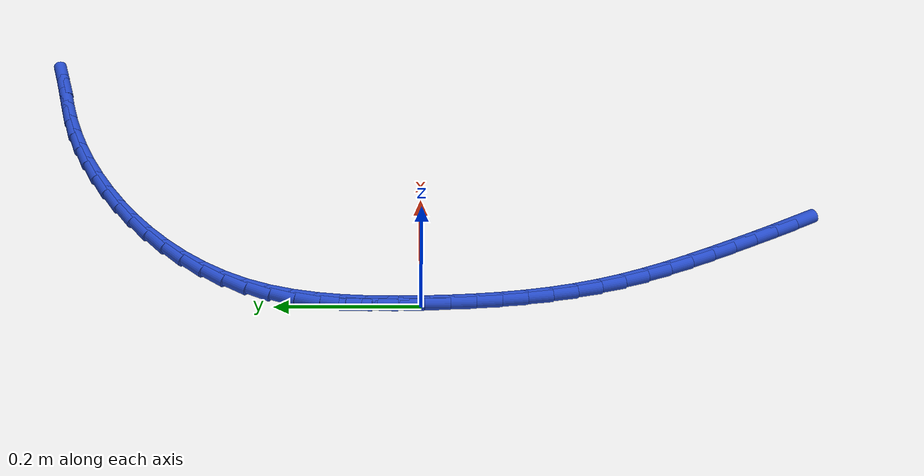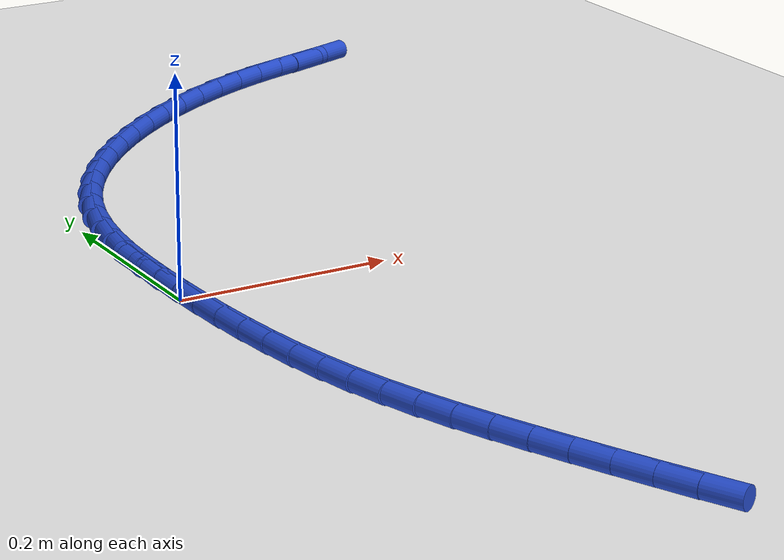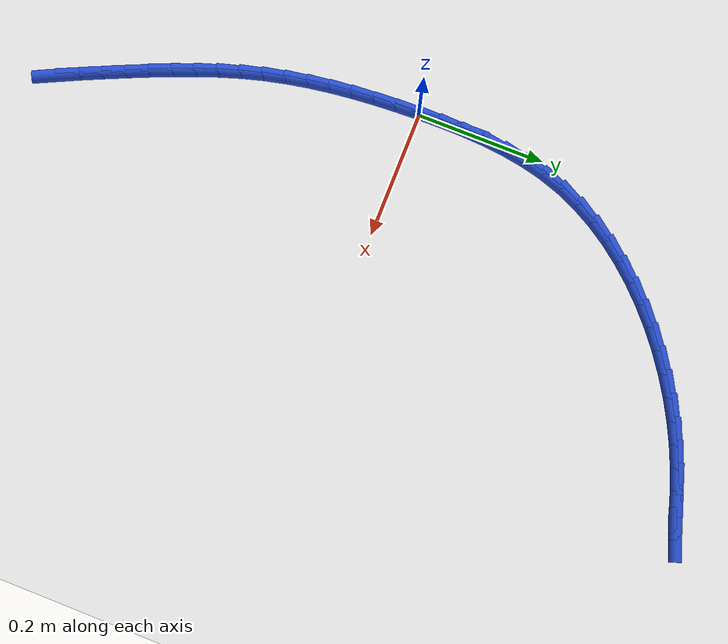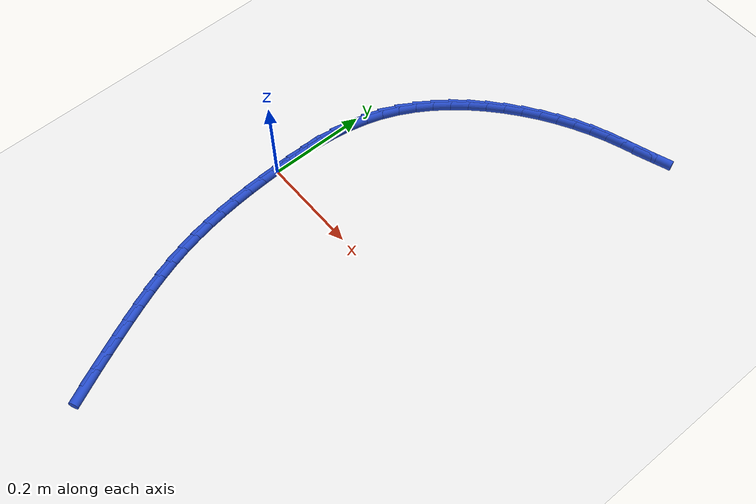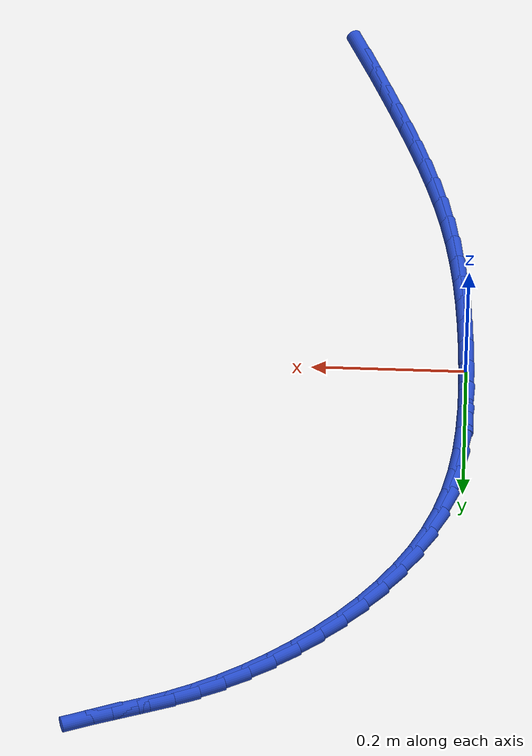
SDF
<sdf version="1.6">
 <world name="default">
  <model name="ground_plane">
   <static>1</static>
   <link name="link">
    <collision name="collision">
     <geometry><plane><normal>0 0 1</normal><size>100 100</size></plane></geometry>
     <surface><friction><ode><mu>100</mu><mu2>50</mu2></ode></friction></surface>
    </collision>
    <visual name="visual">
     <cast_shadows>0</cast_shadows>
     <geometry><plane><normal>0 0 1</normal><size>100 100</size></plane></geometry>
     <material>
      <script><uri>file://media/materials/scripts/gazebo.material</uri><name>Gazebo/WhiteGlow</name></script>
     </material>
    </visual>
   </link>
  </model>
  <model name="line">
   <link name="link_0">
    <pose>-1.4203048459560108e-17 4.85722573273506e-17 0.01 0 1.57 -1.554861941099303</pose>
    <collision name="collision">
     <geometry><cylinder><radius>0.01</radius><length>0.08</length></cylinder></geometry>
    </collision>
    <visual name="visual">
     <material>
      <script><name>Gazebo/Blue</name><uri>file://media/materials/scripts/gazebo.material</uri></script>
     </material>
     <geometry><cylinder><radius>0.01</radius><length>0.08</length></cylinder></geometry>
    </visual>
   </link>
   <link name="link_1">
    <pose>-0.0005607315096017735 0.03518705157915492 0.01 0 1.57 1.5587283322600096</pose>
    <collision name="collision">
     <geometry><cylinder><radius>0.01</radius><length>0.08</length></cylinder></geometry>
    </collision>
    <visual name="visual">
     <material>
      <script><name>Gazebo/Blue</name><uri>file://media/materials/scripts/gazebo.material</uri></script>
     </material>
     <geometry><cylinder><radius>0.01</radius><length>0.08</length></cylinder></geometry>
    </visual>
   </link>
   <link name="link_2">
    <pose>-0.0001364163675874945 0.07034571377427733 0.01 0 1.57 1.5201912283098733</pose>
    <collision name="collision">
     <geometry><cylinder><radius>0.01</radius><length>0.08</length></cylinder></geometry>
    </collision>
    <visual name="visual">
     <material>
      <script><name>Gazebo/Blue</name><uri>file://media/materials/scripts/gazebo.material</uri></script>
     </material>
     <geometry><cylinder><radius>0.01</radius><length>0.08</length></cylinder></geometry>
    </visual>
   </link>
   <link name="link_3">
    <pose>0.0016350499765241493 0.10532151602201432 0.01 0 1.57 1.4706453482498205</pose>
    <collision name="collision">
     <geometry><cylinder><radius>0.01</radius><length>0.08</length></cylinder></geometry>
    </collision>
    <visual name="visual">
     <material>
      <script><name>Gazebo/Blue</name><uri>file://media/materials/scripts/gazebo.material</uri></script>
     </material>
     <geometry><cylinder><radius>0.01</radius><length>0.08</length></cylinder></geometry>
    </visual>
   </link>
   <link name="link_4">
    <pose>0.005115772073214488 0.13995998775901294 0.01 0 1.57 1.409611739790915</pose>
    <collision name="collision">
     <geometry><cylinder><radius>0.01</radius><length>0.08</length></cylinder></geometry>
    </collision>
    <visual name="visual">
     <material>
      <script><name>Gazebo/Blue</name><uri>file://media/materials/scripts/gazebo.material</uri></script>
     </material>
     <geometry><cylinder><radius>0.01</radius><length>0.08</length></cylinder></geometry>
    </visual>
   </link>
   <link name="link_5">
    <pose>0.010667854472964844 0.1741066584219202 0.01 0 1.57 1.3367915266916863</pose>
    <collision name="collision">
     <geometry><cylinder><radius>0.01</radius><length>0.08</length></cylinder></geometry>
    </collision>
    <visual name="visual">
     <material>
      <script><name>Gazebo/Blue</name><uri>file://media/materials/scripts/gazebo.material</uri></script>
     </material>
     <geometry><cylinder><radius>0.01</radius><length>0.08</length></cylinder></geometry>
    </visual>
   </link>
   <link name="link_6">
    <pose>0.018653401726256548 0.20760705744738317 0.01 0 1.57 1.2523183164123235</pose>
    <collision name="collision">
     <geometry><cylinder><radius>0.01</radius><length>0.08</length></cylinder></geometry>
    </collision>
    <visual name="visual">
     <material>
      <script><name>Gazebo/Blue</name><uri>file://media/materials/scripts/gazebo.material</uri></script>
     </material>
     <geometry><cylinder><radius>0.01</radius><length>0.08</length></cylinder></geometry>
    </visual>
   </link>
   <link name="link_7">
    <pose>0.029434515384613204 0.24030671456490235 0.01 0 1.57 1.1601722378784654</pose>
    <collision name="collision">
     <geometry><cylinder><radius>0.01</radius><length>0.08</length></cylinder></geometry>
    </collision>
    <visual name="visual">
     <material>
      <script><name>Gazebo/Blue</name><uri>file://media/materials/scripts/gazebo.material</uri></script>
     </material>
     <geometry><cylinder><radius>0.01</radius><length>0.08</length></cylinder></geometry>
    </visual>
   </link>
   <link name="link_8">
    <pose>0.04326001798189263 0.2720622213973947 0.01 0 1.57 1.0725680303783296</pose>
    <collision name="collision">
     <geometry><cylinder><radius>0.01</radius><length>0.08</length></cylinder></geometry>
    </collision>
    <visual name="visual">
     <material>
      <script><name>Gazebo/Blue</name><uri>file://media/materials/scripts/gazebo.material</uri></script>
     </material>
     <geometry><cylinder><radius>0.01</radius><length>0.08</length></cylinder></geometry>
    </visual>
   </link>
   <link name="link_9">
    <pose>0.05996546603199361 0.30277052571457014 0.01 0 1.57 0.9918570870051373</pose>
    <collision name="collision">
     <geometry><cylinder><radius>0.01</radius><length>0.08</length></cylinder></geometry>
    </collision>
    <visual name="visual">
     <material>
      <script><name>Gazebo/Blue</name><uri>file://media/materials/scripts/gazebo.material</uri></script>
     </material>
     <geometry><cylinder><radius>0.01</radius><length>0.08</length></cylinder></geometry>
    </visual>
   </link>
   <link name="link_10">
    <pose>0.07929219990354885 0.33233777565685635 0.01 0 1.57 0.917427633365914</pose>
    <collision name="collision">
     <geometry><cylinder><radius>0.01</radius><length>0.08</length></cylinder></geometry>
    </collision>
    <visual name="visual">
     <material>
      <script><name>Gazebo/Blue</name><uri>file://media/materials/scripts/gazebo.material</uri></script>
     </material>
     <geometry><cylinder><radius>0.01</radius><length>0.08</length></cylinder></geometry>
    </visual>
   </link>
   <link name="link_11">
    <pose>0.10098155996519091 0.3606701193646808 0.01 0 1.57 0.8485121434693215</pose>
    <collision name="collision">
     <geometry><cylinder><radius>0.01</radius><length>0.08</length></cylinder></geometry>
    </collision>
    <visual name="visual">
     <material>
      <script><name>Gazebo/Blue</name><uri>file://media/materials/scripts/gazebo.material</uri></script>
     </material>
     <geometry><cylinder><radius>0.01</radius><length>0.08</length></cylinder></geometry>
    </visual>
   </link>
   <link name="link_12">
    <pose>0.12477488658555244 0.38767370497847103 0.01 0 1.57 0.7842724643914043</pose>
    <collision name="collision">
     <geometry><cylinder><radius>0.01</radius><length>0.08</length></cylinder></geometry>
    </collision>
    <visual name="visual">
     <material>
      <script><name>Gazebo/Blue</name><uri>file://media/materials/scripts/gazebo.material</uri></script>
     </material>
     <geometry><cylinder><radius>0.01</radius><length>0.08</length></cylinder></geometry>
    </visual>
   </link>
   <link name="link_13">
    <pose>0.1504135201332661 0.4132546806386547 0.01 0 1.57 0.723850347277773</pose>
    <collision name="collision">
     <geometry><cylinder><radius>0.01</radius><length>0.08</length></cylinder></geometry>
    </collision>
    <visual name="visual">
     <material>
      <script><name>Gazebo/Blue</name><uri>file://media/materials/scripts/gazebo.material</uri></script>
     </material>
     <geometry><cylinder><radius>0.01</radius><length>0.08</length></cylinder></geometry>
    </visual>
   </link>
   <link name="link_14">
    <pose>0.17763880097696447 0.4373191944856595 0.01 0 1.57 0.6663911194407688</pose>
    <collision name="collision">
     <geometry><cylinder><radius>0.01</radius><length>0.08</length></cylinder></geometry>
    </collision>
    <visual name="visual">
     <material>
      <script><name>Gazebo/Blue</name><uri>file://media/materials/scripts/gazebo.material</uri></script>
     </material>
     <geometry><cylinder><radius>0.01</radius><length>0.08</length></cylinder></geometry>
    </visual>
   </link>
   <link name="link_15">
    <pose>0.20619206948528018 0.4597733946599125 0.01 0 1.57 0.6110479990104873</pose>
    <collision name="collision">
     <geometry><cylinder><radius>0.01</radius><length>0.08</length></cylinder></geometry>
    </collision>
    <visual name="visual">
     <material>
      <script><name>Gazebo/Blue</name><uri>file://media/materials/scripts/gazebo.material</uri></script>
     </material>
     <geometry><cylinder><radius>0.01</radius><length>0.08</length></cylinder></geometry>
    </visual>
   </link>
   <link name="link_16">
    <pose>0.23581466602684595 0.4805234293018418 0.01 0 1.57 0.5569726340803564</pose>
    <collision name="collision">
     <geometry><cylinder><radius>0.01</radius><length>0.08</length></cylinder></geometry>
    </collision>
    <visual name="visual">
     <material>
      <script><name>Gazebo/Blue</name><uri>file://media/materials/scripts/gazebo.material</uri></script>
     </material>
     <geometry><cylinder><radius>0.01</radius><length>0.08</length></cylinder></geometry>
    </visual>
   </link>
   <link name="link_17">
    <pose>0.26624793097029426 0.4994754465518747 0.01 0 1.57 0.5032952346625456</pose>
    <collision name="collision">
     <geometry><cylinder><radius>0.01</radius><length>0.08</length></cylinder></geometry>
    </collision>
    <visual name="visual">
     <material>
      <script><name>Gazebo/Blue</name><uri>file://media/materials/scripts/gazebo.material</uri></script>
     </material>
     <geometry><cylinder><radius>0.01</radius><length>0.08</length></cylinder></geometry>
    </visual>
   </link>
   <link name="link_18">
    <pose>0.2972332046842579 0.5165355945504388 0.01 0 1.57 0.44909569618928147</pose>
    <collision name="collision">
     <geometry><cylinder><radius>0.01</radius><length>0.08</length></cylinder></geometry>
    </collision>
    <visual name="visual">
     <material>
      <script><name>Gazebo/Blue</name><uri>file://media/materials/scripts/gazebo.material</uri></script>
     </material>
     <geometry><cylinder><radius>0.01</radius><length>0.08</length></cylinder></geometry>
    </visual>
   </link>
   <link name="link_19">
    <pose>0.3285118275373694 0.5316100214379618 0.01 0 1.57 0.39339054419586345</pose>
    <collision name="collision">
     <geometry><cylinder><radius>0.01</radius><length>0.08</length></cylinder></geometry>
    </collision>
    <visual name="visual">
     <material>
      <script><name>Gazebo/Blue</name><uri>file://media/materials/scripts/gazebo.material</uri></script>
     </material>
     <geometry><cylinder><radius>0.01</radius><length>0.08</length></cylinder></geometry>
    </visual>
   </link>
   <link name="link_20">
    <pose>0.3598253945690709 0.544605899940493 0.01 0 1.57 0.342266511397308</pose>
    <collision name="collision">
     <geometry><cylinder><radius>0.01</radius><length>0.08</length></cylinder></geometry>
    </collision>
    <visual name="visual">
     <material>
      <script><name>Gazebo/Blue</name><uri>file://media/materials/scripts/gazebo.material</uri></script>
     </material>
     <geometry><cylinder><radius>0.01</radius><length>0.08</length></cylinder></geometry>
    </visual>
   </link>
   <link name="link_21">
    <pose>0.39098437708469613 0.5557075041599884 0.01 0 1.57 0.3134970369056937</pose>
    <collision name="collision">
     <geometry><cylinder><radius>0.01</radius><length>0.08</length></cylinder></geometry>
    </collision>
    <visual name="visual">
     <material>
      <script><name>Gazebo/Blue</name><uri>file://media/materials/scripts/gazebo.material</uri></script>
     </material>
     <geometry><cylinder><radius>0.01</radius><length>0.08</length></cylinder></geometry>
    </visual>
   </link>
   <link name="link_22">
    <pose>0.42196096570349845 0.5657497335454369 0.01 0 1.57 0.3114217247632722</pose>
    <collision name="collision">
     <geometry><cylinder><radius>0.01</radius><length>0.08</length></cylinder></geometry>
    </collision>
    <visual name="visual">
     <material>
      <script><name>Gazebo/Blue</name><uri>file://media/materials/scripts/gazebo.material</uri></script>
     </material>
     <geometry><cylinder><radius>0.01</radius><length>0.08</length></cylinder></geometry>
    </visual>
   </link>
   <link name="link_23">
    <pose>0.45275053682494615 0.5756607680324459 0.01 0 1.57 0.33663825053759194</pose>
    <collision name="collision">
     <geometry><cylinder><radius>0.01</radius><length>0.08</length></cylinder></geometry>
    </collision>
    <visual name="visual">
     <material>
      <script><name>Gazebo/Blue</name><uri>file://media/materials/scripts/gazebo.material</uri></script>
     </material>
     <geometry><cylinder><radius>0.01</radius><length>0.08</length></cylinder></geometry>
    </visual>
   </link>
   <link name="link_244">
    <pose>0.1454154039886271 -0.5310274036897513 0.01 0 1.57 -1.1249032895118813</pose>
    <collision name="collision">
     <geometry><cylinder><radius>0.01</radius><length>0.08</length></cylinder></geometry>
    </collision>
    <visual name="visual">
     <material>
      <script><name>Gazebo/Blue</name><uri>file://media/materials/scripts/gazebo.material</uri></script>
     </material>
     <geometry><cylinder><radius>0.01</radius><length>0.08</length></cylinder></geometry>
    </visual>
   </link>
   <link name="link_245">
    <pose>0.13010641908738907 -0.49900022360982876 0.01 0 1.57 -1.1443447741564712</pose>
    <collision name="collision">
     <geometry><cylinder><radius>0.01</radius><length>0.08</length></cylinder></geometry>
    </collision>
    <visual name="visual">
     <material>
      <script><name>Gazebo/Blue</name><uri>file://media/materials/scripts/gazebo.material</uri></script>
     </material>
     <geometry><cylinder><radius>0.01</radius><length>0.08</length></cylinder></geometry>
    </visual>
   </link>
   <link name="link_246">
    <pose>0.115434179262852 -0.46670621454244565 0.01 0 1.57 -1.1508876843300195</pose>
    <collision name="collision">
     <geometry><cylinder><radius>0.01</radius><length>0.08</length></cylinder></geometry>
    </collision>
    <visual name="visual">
     <material>
      <script><name>Gazebo/Blue</name><uri>file://media/materials/scripts/gazebo.material</uri></script>
     </material>
     <geometry><cylinder><radius>0.01</radius><length>0.08</length></cylinder></geometry>
    </visual>
   </link>
   <link name="link_247">
    <pose>0.10105793765700924 -0.4345059147612242 0.01 0 1.57 -1.1592163054621998</pose>
    <collision name="collision">
     <geometry><cylinder><radius>0.01</radius><length>0.08</length></cylinder></geometry>
    </collision>
    <visual name="visual">
     <material>
      <script><name>Gazebo/Blue</name><uri>file://media/materials/scripts/gazebo.material</uri></script>
     </material>
     <geometry><cylinder><radius>0.01</radius><length>0.08</length></cylinder></geometry>
    </visual>
   </link>
   <link name="link_248">
    <pose>0.0870486548891104 -0.40241214610364323 0.01 0 1.57 -1.1738423738090846</pose>
    <collision name="collision">
     <geometry><cylinder><radius>0.01</radius><length>0.08</length></cylinder></geometry>
    </collision>
    <visual name="visual">
     <material>
      <script><name>Gazebo/Blue</name><uri>file://media/materials/scripts/gazebo.material</uri></script>
     </material>
     <geometry><cylinder><radius>0.01</radius><length>0.08</length></cylinder></geometry>
    </visual>
   </link>
   <link name="link_249">
    <pose>0.07360096148441746 -0.370333282318787 0.01 0 1.57 -1.1948771490976007</pose>
    <collision name="collision">
     <geometry><cylinder><radius>0.01</radius><length>0.08</length></cylinder></geometry>
    </collision>
    <visual name="visual">
     <material>
      <script><name>Gazebo/Blue</name><uri>file://media/materials/scripts/gazebo.material</uri></script>
     </material>
     <geometry><cylinder><radius>0.01</radius><length>0.08</length></cylinder></geometry>
    </visual>
   </link>
   <link name="link_250">
    <pose>0.060909511967768976 -0.3381776768863797 0.01 0 1.57 -1.2223977518309395</pose>
    <collision name="collision">
     <geometry><cylinder><radius>0.01</radius><length>0.08</length></cylinder></geometry>
    </collision>
    <visual name="visual">
     <material>
      <script><name>Gazebo/Blue</name><uri>file://media/materials/scripts/gazebo.material</uri></script>
     </material>
     <geometry><cylinder><radius>0.01</radius><length>0.08</length></cylinder></geometry>
    </visual>
   </link>
   <link name="link_251">
    <pose>0.0491689608640034 -0.3058536832861451 0.01 0 1.57 -1.2564203992236096</pose>
    <collision name="collision">
     <geometry><cylinder><radius>0.01</radius><length>0.08</length></cylinder></geometry>
    </collision>
    <visual name="visual">
     <material>
      <script><name>Gazebo/Blue</name><uri>file://media/materials/scripts/gazebo.material</uri></script>
     </material>
     <geometry><cylinder><radius>0.01</radius><length>0.08</length></cylinder></geometry>
    </visual>
   </link>
   <link name="link_252">
    <pose>0.038573962697959006 -0.2732696549978065 0.01 0 1.57 -1.2968646077452501</pose>
    <collision name="collision">
     <geometry><cylinder><radius>0.01</radius><length>0.08</length></cylinder></geometry>
    </collision>
    <visual name="visual">
     <material>
      <script><name>Gazebo/Blue</name><uri>file://media/materials/scripts/gazebo.material</uri></script>
     </material>
     <geometry><cylinder><radius>0.01</radius><length>0.08</length></cylinder></geometry>
    </visual>
   </link>
   <link name="link_253">
    <pose>0.029319171994474903 -0.2403339455010897 0.01 0 1.57 -1.3419655217075386</pose>
    <collision name="collision">
     <geometry><cylinder><radius>0.01</radius><length>0.08</length></cylinder></geometry>
    </collision>
    <visual name="visual">
     <material>
      <script><name>Gazebo/Blue</name><uri>file://media/materials/scripts/gazebo.material</uri></script>
     </material>
     <geometry><cylinder><radius>0.01</radius><length>0.08</length></cylinder></geometry>
    </visual>
   </link>
   <link name="link_254">
    <pose>0.021549710018994524 -0.20697578806427588 0.01 0 1.57 -1.3846952525138216</pose>
    <collision name="collision">
     <geometry><cylinder><radius>0.01</radius><length>0.08</length></cylinder></geometry>
    </collision>
    <visual name="visual">
     <material>
      <script><name>Gazebo/Blue</name><uri>file://media/materials/scripts/gazebo.material</uri></script>
     </material>
     <geometry><cylinder><radius>0.01</radius><length>0.08</length></cylinder></geometry>
    </visual>
   </link>
   <link name="link_255">
    <pose>0.015193427282487099 -0.17321600224471226 0.01 0 1.57 -1.423125391448831</pose>
    <collision name="collision">
     <geometry><cylinder><radius>0.01</radius><length>0.08</length></cylinder></geometry>
    </collision>
    <visual name="visual">
     <material>
      <script><name>Gazebo/Blue</name><uri>file://media/materials/scripts/gazebo.material</uri></script>
     </material>
     <geometry><cylinder><radius>0.01</radius><length>0.08</length></cylinder></geometry>
    </visual>
   </link>
   <link name="link_256">
    <pose>0.010118618909207963 -0.13910051202245666 0.01 0 1.57 -1.457270310000431</pose>
    <collision name="collision">
     <geometry><cylinder><radius>0.01</radius><length>0.08</length></cylinder></geometry>
    </collision>
    <visual name="visual">
     <material>
      <script><name>Gazebo/Blue</name><uri>file://media/materials/scripts/gazebo.material</uri></script>
     </material>
     <geometry><cylinder><radius>0.01</radius><length>0.08</length></cylinder></geometry>
    </visual>
   </link>
   <link name="link_257">
    <pose>0.006193578446738405 -0.10467524204218331 0.01 0 1.57 -1.487190796572533</pose>
    <collision name="collision">
     <geometry><cylinder><radius>0.01</radius><length>0.08</length></cylinder></geometry>
    </collision>
    <visual name="visual">
     <material>
      <script><name>Gazebo/Blue</name><uri>file://media/materials/scripts/gazebo.material</uri></script>
     </material>
     <geometry><cylinder><radius>0.01</radius><length>0.08</length></cylinder></geometry>
    </visual>
   </link>
   <link name="link_258">
    <pose>0.003286599442659701 -0.0699861169485666 0.01 0 1.57 -1.512975017886048</pose>
    <collision name="collision">
     <geometry><cylinder><radius>0.01</radius><length>0.08</length></cylinder></geometry>
    </collision>
    <visual name="visual">
     <material>
      <script><name>Gazebo/Blue</name><uri>file://media/materials/scripts/gazebo.material</uri></script>
     </material>
     <geometry><cylinder><radius>0.01</radius><length>0.08</length></cylinder></geometry>
    </visual>
   </link>
   <link name="link_259">
    <pose>0.0012659754445531381 -0.03507906138628078 0.01 0 1.57 -1.5347227772602452</pose>
    <collision name="collision">
     <geometry><cylinder><radius>0.01</radius><length>0.08</length></cylinder></geometry>
    </collision>
    <visual name="visual">
     <material>
      <script><name>Gazebo/Blue</name><uri>file://media/materials/scripts/gazebo.material</uri></script>
     </material>
     <geometry><cylinder><radius>0.01</radius><length>0.08</length></cylinder></geometry>
    </visual>
   </link>
   <link name="link_260">
    <pose>-2.0599841277224584e-18 -1.457167719820518e-16 0.01 0 1.57 -1.5525330333998153</pose>
    <collision name="collision">
     <geometry><cylinder><radius>0.01</radius><length>0.08</length></cylinder></geometry>
    </collision>
    <visual name="visual">
     <material>
      <script><name>Gazebo/Blue</name><uri>file://media/materials/scripts/gazebo.material</uri></script>
     </material>
     <geometry><cylinder><radius>0.01</radius><length>0.08</length></cylinder></geometry>
    </visual>
   </link>
   <link name="link_261">
    <pose>-0.0006430333434184379 0.03520514256560105 0.01 0 1.57 -1.5664943437558096</pose>
    <collision name="collision">
     <geometry><cylinder><radius>0.01</radius><length>0.08</length></cylinder></geometry>
    </collision>
    <visual name="visual">
     <material>
      <script><name>Gazebo/Blue</name><uri>file://media/materials/scripts/gazebo.material</uri></script>
     </material>
     <geometry><cylinder><radius>0.01</radius><length>0.08</length></cylinder></geometry>
    </visual>
   </link>
   <link name="link_262">
    <pose>-0.0007948310381208832 0.07049044166584845 0.01 0 1.57 -1.559521076754922</pose>
    <collision name="collision">
     <geometry><cylinder><radius>0.01</radius><length>0.08</length></cylinder></geometry>
    </collision>
    <visual name="visual">
     <material>
      <script><name>Gazebo/Blue</name><uri>file://media/materials/scripts/gazebo.material</uri></script>
     </material>
     <geometry><cylinder><radius>0.01</radius><length>0.08</length></cylinder></geometry>
    </visual>
   </link>
  </model>
 </world>
</sdf>
